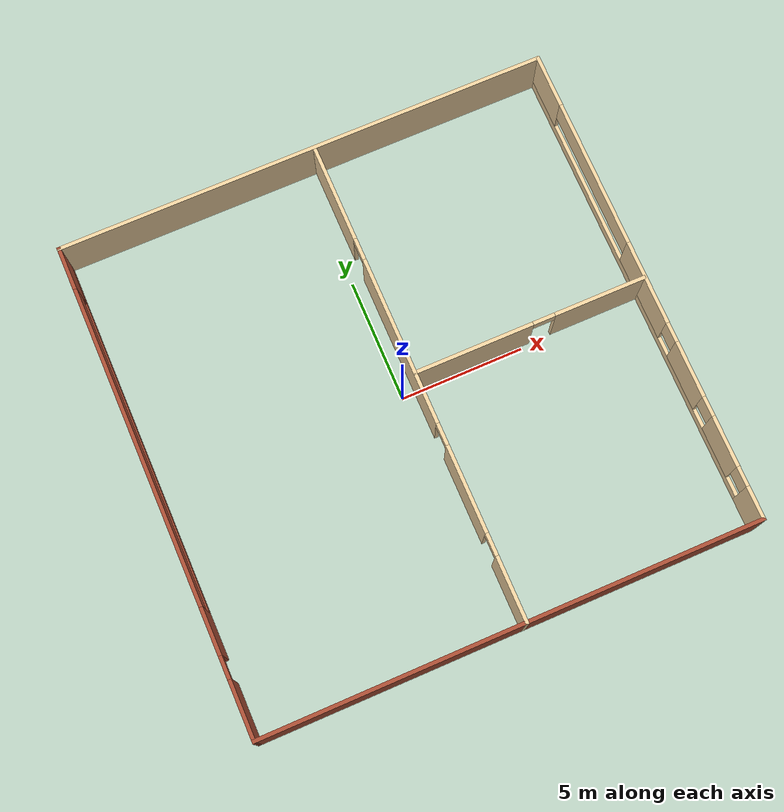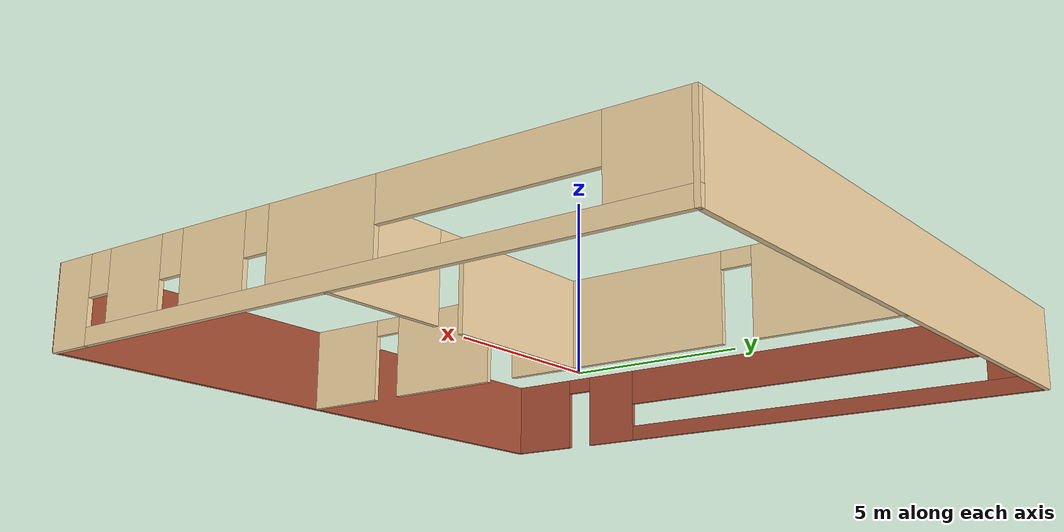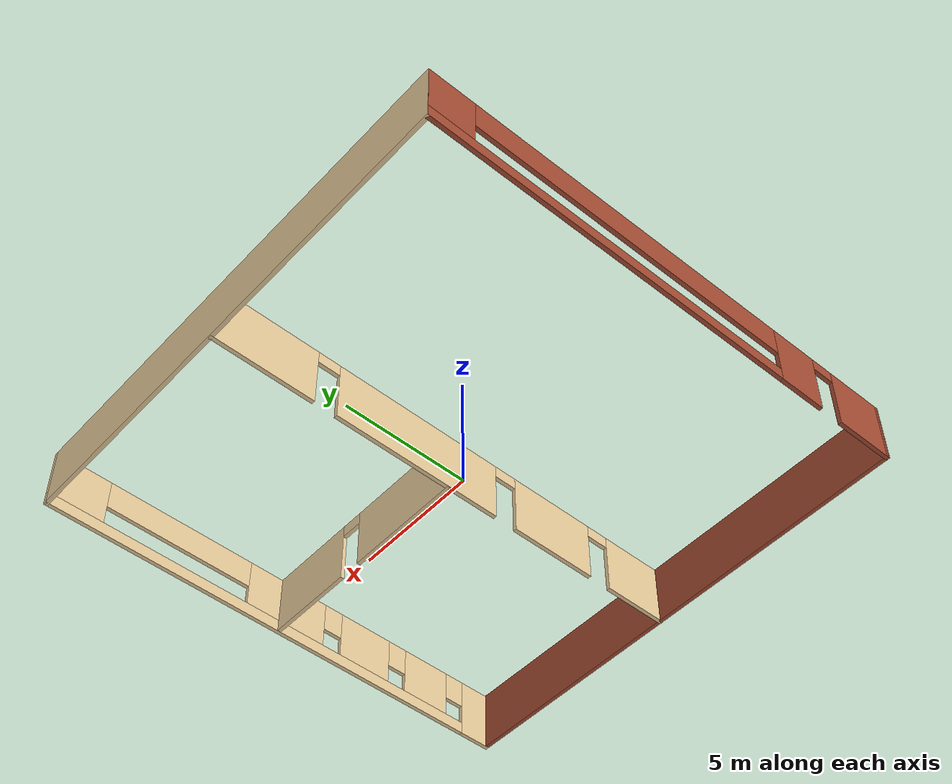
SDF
<?xml version='1.0'?>
<sdf version='1.6'>
  <model name='floor-blueprint'>
    <pose frame=''>0.039338 0.036734 0 0 -0 0</pose>
    <link name='Wall_11'>
      <pose frame=''>0.520348 -0.015048 0 0 -0 1.57213</pose>
      <visual name='Wall_11_Visual_0'>
        <pose frame=''>-8.62771 0 1.25 0 -0 0</pose>
        <geometry>
          <box>
            <size>2.68538 0.15 2.5</size>
          </box>
        </geometry>
        <material>
          <script>
            <uri>file://media/materials/scripts/gazebo.material</uri>
            <name>Gazebo/Grey</name>
          </script>
          <ambient>0.921569 0.807843 0.615686 1</ambient>
        </material>
        <meta>
          <layer>0</layer>
        </meta>
      </visual>
      <collision name='Wall_11_Collision_0'>
        <geometry>
          <box>
            <size>2.68538 0.15 2.5</size>
          </box>
        </geometry>
        <pose frame=''>-8.62771 0 1.25 0 -0 0</pose>
      </collision>
      <visual name='Wall_11_Visual_1'>
        <pose frame=''>-4.6147 0 1.25 0 -0 0</pose>
        <geometry>
          <box>
            <size>3.54064 0.15 2.5</size>
          </box>
        </geometry>
        <material>
          <script>
            <uri>file://media/materials/scripts/gazebo.material</uri>
            <name>Gazebo/Grey</name>
          </script>
          <ambient>0.921569 0.807843 0.615686 1</ambient>
        </material>
        <meta>
          <layer>0</layer>
        </meta>
      </visual>
      <collision name='Wall_11_Collision_1'>
        <geometry>
          <box>
            <size>3.54064 0.15 2.5</size>
          </box>
        </geometry>
        <pose frame=''>-4.6147 0 1.25 0 -0 0</pose>
      </collision>
      <visual name='Wall_11_Visual_2'>
        <pose frame=''>1.51466 0 1.25 0 -0 0</pose>
        <geometry>
          <box>
            <size>6.91808 0.15 2.5</size>
          </box>
        </geometry>
        <material>
          <script>
            <uri>file://media/materials/scripts/gazebo.material</uri>
            <name>Gazebo/Grey</name>
          </script>
          <ambient>0.921569 0.807843 0.615686 1</ambient>
        </material>
        <meta>
          <layer>0</layer>
        </meta>
      </visual>
      <collision name='Wall_11_Collision_2'>
        <geometry>
          <box>
            <size>6.91808 0.15 2.5</size>
          </box>
        </geometry>
        <pose frame=''>1.51466 0 1.25 0 -0 0</pose>
      </collision>
      <visual name='Wall_11_Visual_3'>
        <pose frame=''>7.92205 0 1.25 0 -0 0</pose>
        <geometry>
          <box>
            <size>4.09671 0.15 2.5</size>
          </box>
        </geometry>
        <material>
          <script>
            <uri>file://media/materials/scripts/gazebo.material</uri>
            <name>Gazebo/Grey</name>
          </script>
          <ambient>0.921569 0.807843 0.615686 1</ambient>
        </material>
        <meta>
          <layer>0</layer>
        </meta>
      </visual>
      <collision name='Wall_11_Collision_3'>
        <geometry>
          <box>
            <size>4.09671 0.15 2.5</size>
          </box>
        </geometry>
        <pose frame=''>7.92205 0 1.25 0 -0 0</pose>
      </collision>
      <visual name='Wall_11_Visual_4'>
        <pose frame=''>-6.83502 0 2.25 0 -0 0</pose>
        <geometry>
          <box>
            <size>0.9 0.15 0.5</size>
          </box>
        </geometry>
        <material>
          <script>
            <uri>file://media/materials/scripts/gazebo.material</uri>
            <name>Gazebo/Grey</name>
          </script>
          <ambient>0.921569 0.807843 0.615686 1</ambient>
        </material>
        <meta>
          <layer>0</layer>
        </meta>
      </visual>
      <collision name='Wall_11_Collision_4'>
        <geometry>
          <box>
            <size>0.9 0.15 0.5</size>
          </box>
        </geometry>
        <pose frame=''>-6.83502 0 2.25 0 -0 0</pose>
      </collision>
      <visual name='Wall_11_Visual_5'>
        <pose frame=''>-2.39438 0 2.25 0 -0 0</pose>
        <geometry>
          <box>
            <size>0.9 0.15 0.5</size>
          </box>
        </geometry>
        <material>
          <script>
            <uri>file://media/materials/scripts/gazebo.material</uri>
            <name>Gazebo/Grey</name>
          </script>
          <ambient>0.921569 0.807843 0.615686 1</ambient>
        </material>
        <meta>
          <layer>0</layer>
        </meta>
      </visual>
      <collision name='Wall_11_Collision_5'>
        <geometry>
          <box>
            <size>0.9 0.15 0.5</size>
          </box>
        </geometry>
        <pose frame=''>-2.39438 0 2.25 0 -0 0</pose>
      </collision>
      <visual name='Wall_11_Visual_6'>
        <pose frame=''>5.4237 0 2.25 0 -0 0</pose>
        <geometry>
          <box>
            <size>0.9 0.15 0.5</size>
          </box>
        </geometry>
        <material>
          <script>
            <uri>file://media/materials/scripts/gazebo.material</uri>
            <name>Gazebo/Grey</name>
          </script>
          <ambient>0.921569 0.807843 0.615686 1</ambient>
        </material>
        <meta>
          <layer>0</layer>
        </meta>
      </visual>
      <collision name='Wall_11_Collision_6'>
        <geometry>
          <box>
            <size>0.9 0.15 0.5</size>
          </box>
        </geometry>
        <pose frame=''>5.4237 0 2.25 0 -0 0</pose>
      </collision>
    </link>
    <link name='Wall_2'>
      <collision name='Wall_2_Collision'>
        <geometry>
          <box>
            <size>20.1008 0.15 2.5</size>
          </box>
        </geometry>
        <pose frame=''>0 0 1.25 0 -0 0</pose>
      </collision>
      <visual name='Wall_2_Visual'>
        <pose frame=''>0 0 1.25 0 -0 0</pose>
        <geometry>
          <box>
            <size>20.1008 0.15 2.5</size>
          </box>
        </geometry>
        <material>
          <script>
            <uri>file://media/materials/scripts/gazebo.material</uri>
            <name>Gazebo/Bricks</name>
          </script>
          <ambient>1 1 1 1</ambient>
        </material>
        <meta>
          <layer>0</layer>
        </meta>
      </visual>
      <pose frame=''>2.1e-05 -9.90419 0 0 -0 0.000505</pose>
    </link>
    <link name='Wall_28'>
      <pose frame=''>5.22927 0.135167 0 0 -0 0</pose>
      <visual name='Wall_28_Visual_0'>
        <pose frame=''>-2.32374 0 1.25 0 -0 0</pose>
        <geometry>
          <box>
            <size>4.85252 0.15 2.5</size>
          </box>
        </geometry>
        <material>
          <script>
            <uri>file://media/materials/scripts/gazebo.material</uri>
            <name>Gazebo/Grey</name>
          </script>
          <ambient>0.921569 0.807843 0.615686 1</ambient>
        </material>
        <meta>
          <layer>0</layer>
        </meta>
      </visual>
      <collision name='Wall_28_Collision_0'>
        <geometry>
          <box>
            <size>4.85252 0.15 2.5</size>
          </box>
        </geometry>
        <pose frame=''>-2.32374 0 1.25 0 -0 0</pose>
      </collision>
      <visual name='Wall_28_Visual_1'>
        <pose frame=''>2.87626 0 1.25 0 -0 0</pose>
        <geometry>
          <box>
            <size>3.74748 0.15 2.5</size>
          </box>
        </geometry>
        <material>
          <script>
            <uri>file://media/materials/scripts/gazebo.material</uri>
            <name>Gazebo/Grey</name>
          </script>
          <ambient>0.921569 0.807843 0.615686 1</ambient>
        </material>
        <meta>
          <layer>0</layer>
        </meta>
      </visual>
      <collision name='Wall_28_Collision_1'>
        <geometry>
          <box>
            <size>3.74748 0.15 2.5</size>
          </box>
        </geometry>
        <pose frame=''>2.87626 0 1.25 0 -0 0</pose>
      </collision>
      <visual name='Wall_28_Visual_2'>
        <pose frame=''>0.552517 0 2.25 0 -0 0</pose>
        <geometry>
          <box>
            <size>0.9 0.15 0.5</size>
          </box>
        </geometry>
        <material>
          <script>
            <uri>file://media/materials/scripts/gazebo.material</uri>
            <name>Gazebo/Grey</name>
          </script>
          <ambient>0.921569 0.807843 0.615686 1</ambient>
        </material>
        <meta>
          <layer>0</layer>
        </meta>
      </visual>
      <collision name='Wall_28_Collision_2'>
        <geometry>
          <box>
            <size>0.9 0.15 0.5</size>
          </box>
        </geometry>
        <pose frame=''>0.552517 0 2.25 0 -0 0</pose>
      </collision>
    </link>
    <link name='Wall_3'>
      <pose frame=''>9.97471 0.005693 0 0 -0 1.57087</pose>
      <visual name='Wall_3_Visual_0'>
        <pose frame=''>-9.28869 0 1.25 0 -0 0</pose>
        <geometry>
          <box>
            <size>1.38231 0.15 2.5</size>
          </box>
        </geometry>
        <material>
          <script>
            <uri>file://media/materials/scripts/gazebo.material</uri>
            <name>Gazebo/Grey</name>
          </script>
          <ambient>0.921569 0.807843 0.615686 1</ambient>
        </material>
        <meta>
          <layer>0</layer>
        </meta>
      </visual>
      <collision name='Wall_3_Collision_0'>
        <geometry>
          <box>
            <size>1.38231 0.15 2.5</size>
          </box>
        </geometry>
        <pose frame=''>-9.28869 0 1.25 0 -0 0</pose>
      </collision>
      <visual name='Wall_3_Visual_1'>
        <pose frame=''>0.691154 0 0.25 0 -0 0</pose>
        <geometry>
          <box>
            <size>18.5774 0.15 0.5</size>
          </box>
        </geometry>
        <material>
          <script>
            <uri>file://media/materials/scripts/gazebo.material</uri>
            <name>Gazebo/Grey</name>
          </script>
          <ambient>0.921569 0.807843 0.615686 1</ambient>
        </material>
        <meta>
          <layer>0</layer>
        </meta>
      </visual>
      <collision name='Wall_3_Collision_1'>
        <geometry>
          <box>
            <size>18.5774 0.15 0.5</size>
          </box>
        </geometry>
        <pose frame=''>0.691154 0 0.25 0 -0 0</pose>
      </collision>
      <visual name='Wall_3_Visual_2'>
        <pose frame=''>-6.76344 0 1.5 0 -0 0</pose>
        <geometry>
          <box>
            <size>2.0682 0.15 2</size>
          </box>
        </geometry>
        <material>
          <script>
            <uri>file://media/materials/scripts/gazebo.material</uri>
            <name>Gazebo/Grey</name>
          </script>
          <ambient>0.921569 0.807843 0.615686 1</ambient>
        </material>
        <meta>
          <layer>0</layer>
        </meta>
      </visual>
      <collision name='Wall_3_Collision_2'>
        <geometry>
          <box>
            <size>2.0682 0.15 2</size>
          </box>
        </geometry>
        <pose frame=''>-6.76344 0 1.5 0 -0 0</pose>
      </collision>
      <visual name='Wall_3_Visual_3'>
        <pose frame=''>-3.77959 0 1.5 0 -0 0</pose>
        <geometry>
          <box>
            <size>2.29949 0.15 2</size>
          </box>
        </geometry>
        <material>
          <script>
            <uri>file://media/materials/scripts/gazebo.material</uri>
            <name>Gazebo/Grey</name>
          </script>
          <ambient>0.921569 0.807843 0.615686 1</ambient>
        </material>
        <meta>
          <layer>0</layer>
        </meta>
      </visual>
      <collision name='Wall_3_Collision_3'>
        <geometry>
          <box>
            <size>2.29949 0.15 2</size>
          </box>
        </geometry>
        <pose frame=''>-3.77959 0 1.5 0 -0 0</pose>
      </collision>
      <visual name='Wall_3_Visual_4'>
        <pose frame=''>-0.101831 0 1.5 0 -0 0</pose>
        <geometry>
          <box>
            <size>3.45603 0.15 2</size>
          </box>
        </geometry>
        <material>
          <script>
            <uri>file://media/materials/scripts/gazebo.material</uri>
            <name>Gazebo/Grey</name>
          </script>
          <ambient>0.921569 0.807843 0.615686 1</ambient>
        </material>
        <meta>
          <layer>0</layer>
        </meta>
      </visual>
      <collision name='Wall_3_Collision_4'>
        <geometry>
          <box>
            <size>3.45603 0.15 2</size>
          </box>
        </geometry>
        <pose frame=''>-0.101831 0 1.5 0 -0 0</pose>
      </collision>
      <visual name='Wall_3_Visual_5'>
        <pose frame=''>8.86304 0 1.5 0 -0 0</pose>
        <geometry>
          <box>
            <size>2.23361 0.15 2</size>
          </box>
        </geometry>
        <material>
          <script>
            <uri>file://media/materials/scripts/gazebo.material</uri>
            <name>Gazebo/Grey</name>
          </script>
          <ambient>0.921569 0.807843 0.615686 1</ambient>
        </material>
        <meta>
          <layer>0</layer>
        </meta>
      </visual>
      <collision name='Wall_3_Collision_5'>
        <geometry>
          <box>
            <size>2.23361 0.15 2</size>
          </box>
        </geometry>
        <pose frame=''>8.86304 0 1.5 0 -0 0</pose>
      </collision>
      <visual name='Wall_3_Visual_6'>
        <pose frame=''>-8.19754 0 1.9 0 -0 0</pose>
        <geometry>
          <box>
            <size>0.8 0.15 1.2</size>
          </box>
        </geometry>
        <material>
          <script>
            <uri>file://media/materials/scripts/gazebo.material</uri>
            <name>Gazebo/Grey</name>
          </script>
          <ambient>0.921569 0.807843 0.615686 1</ambient>
        </material>
        <meta>
          <layer>0</layer>
        </meta>
      </visual>
      <collision name='Wall_3_Collision_6'>
        <geometry>
          <box>
            <size>0.8 0.15 1.2</size>
          </box>
        </geometry>
        <pose frame=''>-8.19754 0 1.9 0 -0 0</pose>
      </collision>
      <visual name='Wall_3_Visual_7'>
        <pose frame=''>-5.32933 0 1.9 0 -0 0</pose>
        <geometry>
          <box>
            <size>0.8 0.15 1.2</size>
          </box>
        </geometry>
        <material>
          <script>
            <uri>file://media/materials/scripts/gazebo.material</uri>
            <name>Gazebo/Grey</name>
          </script>
          <ambient>0.921569 0.807843 0.615686 1</ambient>
        </material>
        <meta>
          <layer>0</layer>
        </meta>
      </visual>
      <collision name='Wall_3_Collision_7'>
        <geometry>
          <box>
            <size>0.8 0.15 1.2</size>
          </box>
        </geometry>
        <pose frame=''>-5.32933 0 1.9 0 -0 0</pose>
      </collision>
      <visual name='Wall_3_Visual_8'>
        <pose frame=''>-2.22985 0 1.9 0 -0 0</pose>
        <geometry>
          <box>
            <size>0.8 0.15 1.2</size>
          </box>
        </geometry>
        <material>
          <script>
            <uri>file://media/materials/scripts/gazebo.material</uri>
            <name>Gazebo/Grey</name>
          </script>
          <ambient>0.921569 0.807843 0.615686 1</ambient>
        </material>
        <meta>
          <layer>0</layer>
        </meta>
      </visual>
      <collision name='Wall_3_Collision_8'>
        <geometry>
          <box>
            <size>0.8 0.15 1.2</size>
          </box>
        </geometry>
        <pose frame=''>-2.22985 0 1.9 0 -0 0</pose>
      </collision>
      <visual name='Wall_3_Visual_9'>
        <pose frame=''>4.68621 0 1.9 0 -0 0</pose>
        <geometry>
          <box>
            <size>6.12005 0.15 1.2</size>
          </box>
        </geometry>
        <material>
          <script>
            <uri>file://media/materials/scripts/gazebo.material</uri>
            <name>Gazebo/Grey</name>
          </script>
          <ambient>0.921569 0.807843 0.615686 1</ambient>
        </material>
        <meta>
          <layer>0</layer>
        </meta>
      </visual>
      <collision name='Wall_3_Collision_9'>
        <geometry>
          <box>
            <size>6.12005 0.15 1.2</size>
          </box>
        </geometry>
        <pose frame=''>4.68621 0 1.9 0 -0 0</pose>
      </collision>
    </link>
    <link name='Wall_5'>
      <pose frame=''>-9.96438 -0.010103 0 0 -0 1.56969</pose>
      <visual name='Wall_5_Visual_0'>
        <pose frame=''>-8.77082 0 1.25 0 -0 0</pose>
        <geometry>
          <box>
            <size>2.40661 0.15 2.5</size>
          </box>
        </geometry>
        <material>
          <script>
            <uri>file://media/materials/scripts/gazebo.material</uri>
            <name>Gazebo/Bricks</name>
          </script>
          <ambient>1 1 1 1</ambient>
        </material>
        <meta>
          <layer>0</layer>
        </meta>
      </visual>
      <collision name='Wall_5_Collision_0'>
        <geometry>
          <box>
            <size>2.40661 0.15 2.5</size>
          </box>
        </geometry>
        <pose frame=''>-8.77082 0 1.25 0 -0 0</pose>
      </collision>
      <visual name='Wall_5_Visual_1'>
        <pose frame=''>-5.72783 0 1.25 0 -0 0</pose>
        <geometry>
          <box>
            <size>1.87936 0.15 2.5</size>
          </box>
        </geometry>
        <material>
          <script>
            <uri>file://media/materials/scripts/gazebo.material</uri>
            <name>Gazebo/Bricks</name>
          </script>
          <ambient>1 1 1 1</ambient>
        </material>
        <meta>
          <layer>0</layer>
        </meta>
      </visual>
      <collision name='Wall_5_Collision_1'>
        <geometry>
          <box>
            <size>1.87936 0.15 2.5</size>
          </box>
        </geometry>
        <pose frame=''>-5.72783 0 1.25 0 -0 0</pose>
      </collision>
      <visual name='Wall_5_Visual_2'>
        <pose frame=''>2.59299 0 0.25 0 -0 0</pose>
        <geometry>
          <box>
            <size>14.7623 0.15 0.5</size>
          </box>
        </geometry>
        <material>
          <script>
            <uri>file://media/materials/scripts/gazebo.material</uri>
            <name>Gazebo/Bricks</name>
          </script>
          <ambient>1 1 1 1</ambient>
        </material>
        <meta>
          <layer>0</layer>
        </meta>
      </visual>
      <collision name='Wall_5_Collision_2'>
        <geometry>
          <box>
            <size>14.7623 0.15 0.5</size>
          </box>
        </geometry>
        <pose frame=''>2.59299 0 0.25 0 -0 0</pose>
      </collision>
      <visual name='Wall_5_Visual_3'>
        <pose frame=''>9.0761 0 1.5 0 -0 0</pose>
        <geometry>
          <box>
            <size>1.79604 0.15 2</size>
          </box>
        </geometry>
        <material>
          <script>
            <uri>file://media/materials/scripts/gazebo.material</uri>
            <name>Gazebo/Bricks</name>
          </script>
          <ambient>1 1 1 1</ambient>
        </material>
        <meta>
          <layer>0</layer>
        </meta>
      </visual>
      <collision name='Wall_5_Collision_3'>
        <geometry>
          <box>
            <size>1.79604 0.15 2</size>
          </box>
        </geometry>
        <pose frame=''>9.0761 0 1.5 0 -0 0</pose>
      </collision>
      <visual name='Wall_5_Visual_4'>
        <pose frame=''>1.69496 0 1.9 0 -0 0</pose>
        <geometry>
          <box>
            <size>12.9662 0.15 1.2</size>
          </box>
        </geometry>
        <material>
          <script>
            <uri>file://media/materials/scripts/gazebo.material</uri>
            <name>Gazebo/Bricks</name>
          </script>
          <ambient>1 1 1 1</ambient>
        </material>
        <meta>
          <layer>0</layer>
        </meta>
      </visual>
      <collision name='Wall_5_Collision_4'>
        <geometry>
          <box>
            <size>12.9662 0.15 1.2</size>
          </box>
        </geometry>
        <pose frame=''>1.69496 0 1.9 0 -0 0</pose>
      </collision>
      <visual name='Wall_5_Visual_5'>
        <pose frame=''>-7.11751 0 2.25 0 -0 0</pose>
        <geometry>
          <box>
            <size>0.9 0.15 0.5</size>
          </box>
        </geometry>
        <material>
          <script>
            <uri>file://media/materials/scripts/gazebo.material</uri>
            <name>Gazebo/Bricks</name>
          </script>
          <ambient>1 1 1 1</ambient>
        </material>
        <meta>
          <layer>0</layer>
        </meta>
      </visual>
      <collision name='Wall_5_Collision_5'>
        <geometry>
          <box>
            <size>0.9 0.15 0.5</size>
          </box>
        </geometry>
        <pose frame=''>-7.11751 0 2.25 0 -0 0</pose>
      </collision>
    </link>
    <link name='Wall_7'>
      <collision name='Wall_7_Collision'>
        <geometry>
          <box>
            <size>20.0733 0.15 2.5</size>
          </box>
        </geometry>
        <pose frame=''>0 0 1.25 0 -0 0</pose>
      </collision>
      <visual name='Wall_7_Visual'>
        <pose frame=''>0 0 1.25 0 -0 0</pose>
        <geometry>
          <box>
            <size>20.0733 0.15 2.5</size>
          </box>
        </geometry>
        <material>
          <script>
            <uri>file://media/materials/scripts/gazebo.material</uri>
            <name>Gazebo/Grey</name>
          </script>
          <ambient>0.921569 0.807843 0.615686 1</ambient>
        </material>
        <meta>
          <layer>0</layer>
        </meta>
      </visual>
      <pose frame=''>0.012375 9.90961 0 0 0 -3.1415</pose>
    </link>
    <static>1</static>
  </model>
</sdf>
